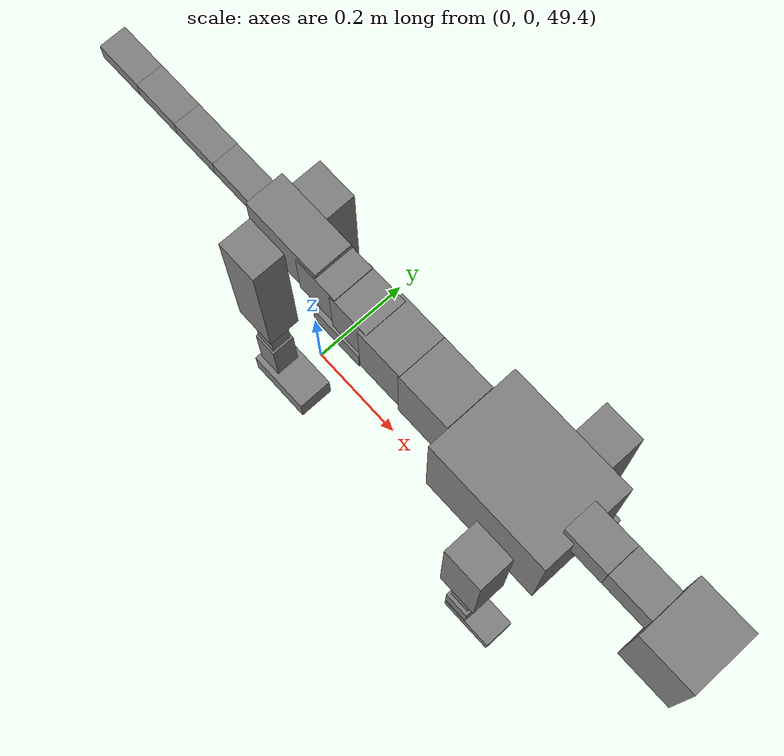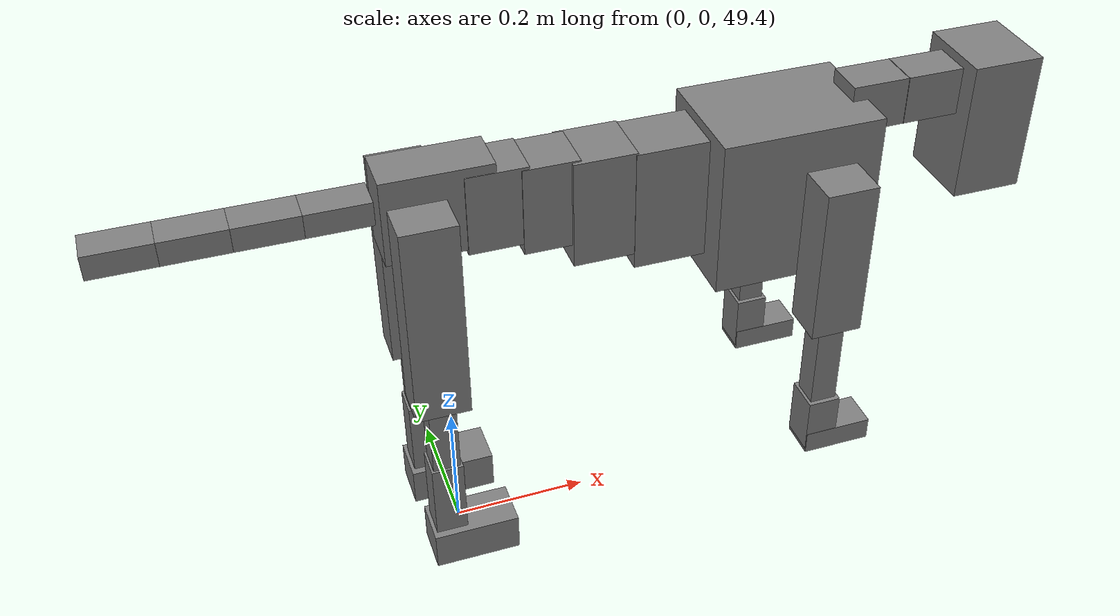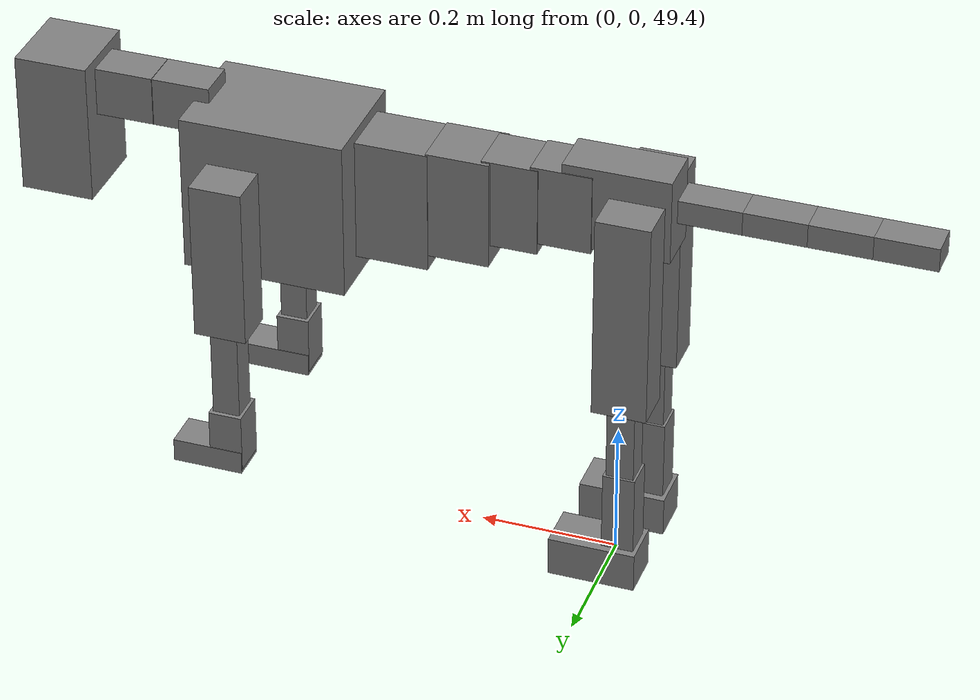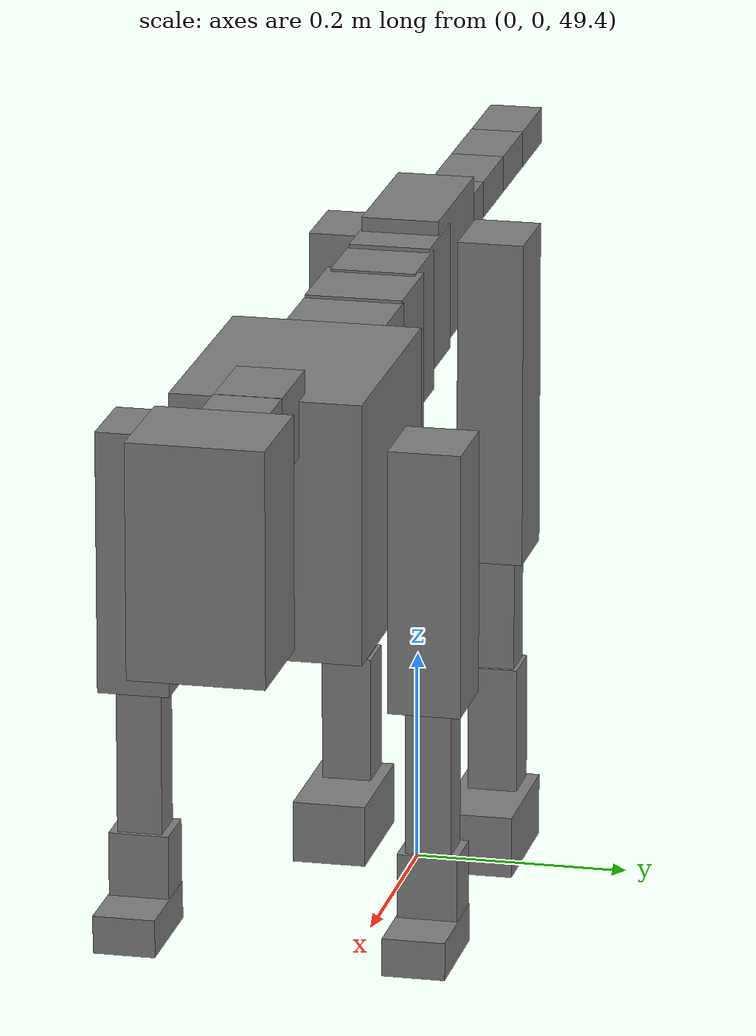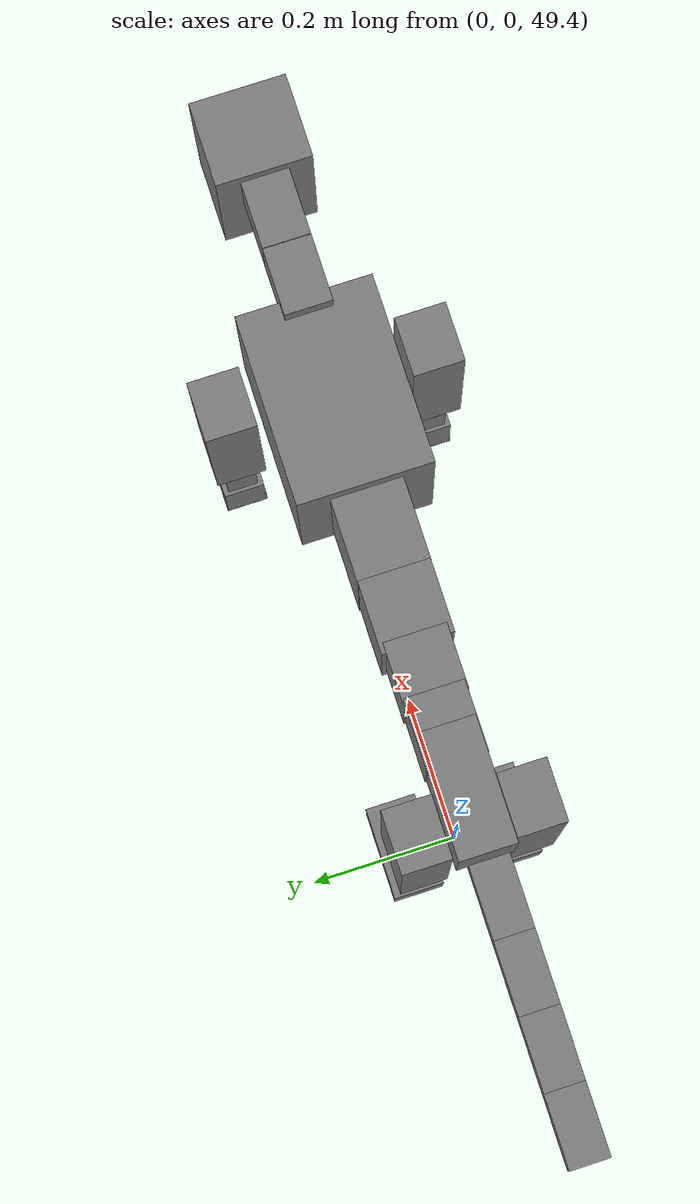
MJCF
<mujoco model="dog">

    <default>
        <joint armature="0.02" stiffness="1" damping="0.2" limited="true"/>
        <geom condim="3" friction="1 0.05 0.05" margin="0.01"/>
        <motor ctrllimited="true" ctrlrange="-1.0 1.0" forcelimited="true" gear="50"/>
    </default>

    <compiler inertiafromgeom="true" angle="radian"/>

    <option timestep="0.016" iterations="50" tolerance="1e-10" solver="Newton" jacobian="dense" cone="pyramidal"/>

    <size nconmax="20000" njmax="60000" nstack="5000000"/>
    <visual>
        <map force="0.1" zfar="30"/>
        <rgba haze="0.15 0.25 0.35 1"/>
        <quality shadowsize="2048"/>
        <global offwidth="800" offheight="800"/>
    </visual>

    <asset>
        <texture type="skybox" builtin="gradient" rgb1="0.3 0.5 0.7" rgb2="0 0 0" width="512" height="512"/>
        <texture name="texplane" type="2d" builtin="checker" rgb1=".2 .3 .4" rgb2=".1 0.15 0.2" width="512" height="512"
                 mark="cross" markrgb=".8 .8 .8"/>
        <texture name="texgeom" type="cube" builtin="flat" mark="cross" width="127" height="1278" rgb1="0.8 0.6 0.4"
                 rgb2="0.8 0.6 0.4" markrgb="1 1 1" random="0.01"/>

        <material name="matplane" reflectance="0.3" texture="texplane" texrepeat="1 1" texuniform="true"/>
        <material name="matgeom" texture="texgeom" texuniform="true" rgba="0.8 0.6 .4 1"/>
    </asset>

    <worldbody>
        <geom name="floor" pos="0 0 0" size="0 0 .25" type="plane" material="matplane" condim="3"/>

        <light directional="false" diffuse=".2 .2 .2" specular="0 0 0" pos="0 0 5" dir="0 0 -1" castshadow="false"/>
        <light mode="targetbodycom" target="torso" directional="false" diffuse=".8 .8 .8" specular="0.3 0.3 0.3"
               pos="0 0 4.0" dir="0 0 -1"/>

        <body name="root" pos="0 0 50">
            <freejoint name="root_1"/>
            <geom type="box" pos="0 0 -0.02" size="0.0774  0.0358  0.063" density="2030"/>

            <body name="spine1" pos="0.054 0 0">
                <joint name="spine1_y" axis="0 1 0" range="0 0.7" limited="true"/>
                <geom type="box" pos="0.02375 0 -0.03" size="0.04375  0.0375  0.05985" density="2030"/>

                <body name="spine2" pos="0.0612 0 0">
                    <joint name="spine2_y" axis="0 1 0" range="-0.15 0.15" limited="true"/>
                    <geom type="box" pos="0.03555  0  -0.04" size="0.04055  0.039  0.06615" density="2030"/>

                    <body name="spine3" pos="0.0730 0 0">
                        <joint name="spine3_y" axis="0 1 0" range="-0.15 0.15" limited="true"/>
                        <geom type="box" pos="0.03555  0  -0.057" size="0.04555  0.0445  0.081" density="2030"/>

                        <body name="spine4" pos="0.0780 0 0">
                            <joint name="spine4_y" axis="0 1 0" range="-0.15 0.15" limited="true"/>
                            <geom type="box" pos="0.05265  0  -0.07" size="0.05265  0.045  0.09135" density="2030"/>

                            <body name="torso" pos="0.1082 0 0">
                                <joint name="torso_y" axis="0 1 0" range="-0.15 0.15" limited="true"/>
                                <geom type="box" pos="0.11925  0  -0.085" size="0.11925  0.085  0.11745"
                                      density="2030"/>

                                <body name="neck1" pos="0.2160  0   0.0180">
                                    <joint name="neck1_y" axis="0 1 0" range="-1.2  -1" limited="true"/>
                                    <geom type="box" pos="0.0423  0  0" size="0.0423  0.03  0.036" density="2325"/>

                                    <body name="neck2" pos="0.0853  0  0">
                                        <joint name="neck2_y" axis="0 1 0" range="0.1  0" limited="true"/>
                                        <geom type="box" pos="0.0423  0  0" size="0.0423  0.03  0.036" density="2325"/>

                                        <body name="head" pos="0.0853  0  0">
                                            <joint name="head_y" axis="0 1 0" range="-0.3  -0.2" limited="true"/>
                                            <geom type="box" pos="0.0531  0  -0.055" size="0.0531  0.06  0.1044"
                                                  density="4030"/>

                                        </body>
                                    </body>
                                </body>

                                <body name="front_shoulder" pos="0.156  0   -0.0480">
                                    <joint name="front_shoulder_y" axis="0 1 0" range="-1 1.5" limited="true"/>
                                    <geom type="box" pos="0 0.13 -0.0927" size="0.0379  0.0324  0.1194" density="1158"/>
                                    <geom type="box" pos="0 -0.13 -0.0927" size="0.0379  0.0324  0.1194"
                                          density="1158"/>

                                    <body name="front_elbow" pos="0  0  -0.1854">
                                        <joint name="front_elbow_y" axis="0 1 0" range="-2 0" limited="true"/>
                                        <geom type="box" pos="0 0.13 -0.0872" size="0.0198  0.0202  0.0872"
                                              density="1081"/>
                                        <geom type="box" pos="0 -0.13 -0.0872" size="0.0198  0.0202  0.0872"
                                              density="1081"/>

                                        <body name="front_wrist" pos="0  0  -0.1743">
                                            <joint name="front_wrist_y" axis="0 1 0" range="-0.2 0" limited="true"/>
                                            <geom type="box" pos="0 0.13 -0.0302" size="0.0243  0.0270  0.0433"
                                                  density="1664"/>
                                            <geom type="box" pos="0 -0.13 -0.0302" size="0.0243  0.0270  0.0433"
                                                  density="1664"/>

                                            <body name="front_finger_end" pos="0  0  -0.0603">
                                                <joint name="front_finger_y" axis="0 1 0" range="-0.4 1"
                                                       limited="true"/>
                                                <geom type="box" pos="0.0280  0.13  -0.0023"
                                                      size="0.0514  0.0280  0.0173" density="1515"/>
                                                <geom type="box" pos="0.0280  -0.13  -0.0023"
                                                      size="0.0514  0.0280  0.0173" density="1515"/>

                                            </body>

                                        </body>
                                    </body>
                                </body>

                            </body>
                        </body>
                    </body>
                </body>
            </body>

            <body name="back_hip" pos="-0.03 0 -0.018">
                <joint name="back_hip_y" axis="0 1 0" range="-1.5 0.3" limited="true"/>
                <geom type="box" pos="0 0.07 -0.1314" size="0.0394  0.0309  0.1542" density="1154"/>
                <geom type="box" pos="0 -0.07 -0.1314" size="0.0394  0.0309  0.1542" density="1154"/>

                <body name="back_knee" pos="0  0  -0.2627">
                    <joint name="back_knee_y" axis="0 1 0" range="0 2.8" limited="true"/>
                    <geom type="box" pos="0 0.07 -0.0716" size="0.0199  0.0196  0.0871" density="1227"/>
                    <geom type="box" pos="0 -0.07 -0.0716" size="0.0199  0.0196  0.0871" density="1227"/>

                    <body name="back_ankle" pos="0  0  -0.1431">
                        <joint name="back_ankle_y" axis="0 1 0" range="-2.2 0" limited="true"/>
                        <geom type="box" pos="0 0.07 -0.0616" size="0.0233  0.0233  0.0729" density="1284"/>
                        <geom type="box" pos="0 -0.07 -0.0616" size="0.0233  0.0233  0.0729" density="1284"/>

                        <body name="back_toe_end" pos="0  0  -0.1232">
                            <joint name="back_toe_y" axis="0 1 0" range="-0.4 1" limited="true"/>
                            <geom type="box" pos="0.0344  0.07  -0.0142" size="0.0631  0.0344  0.0292" density="1515"/>
                            <geom type="box" pos="0.0344  -0.07  -0.0142" size="0.0631  0.0344  0.0292" density="1515"/>

                        </body>
                    </body>
                </body>
            </body>

            <body name="tail1" pos="-0.074 0 -0.006">
                <joint name="tail1_y" axis="0 1 0" range="-0.2 0.2" limited="true"/>
                <geom type="box" pos="-0.0536  0  0" size="0.045  0.025  0.0175" density="1587"/>

                <body name="tail2" pos="-0.09 0 0">
                    <joint name="tail2_y" axis="0 1 0" range="-0.2 0.2" limited="true"/>
                    <geom type="box" pos="-0.0536  0  0" size="0.045  0.025  0.0175" density="1587"/>

                    <body name="tail3" pos="-0.09 0 0">
                        <joint name="tail3_y" axis="0 1 0" range="-0.2 0.2" limited="true"/>
                        <geom type="box" pos="-0.0536  0  0" size="0.045  0.025  0.0175" density="1587"/>

                        <body name="tail4" pos="-0.09 0 0">
                            <joint name="tail4_y" axis="0 1 0" range="-0.2 0.2" limited="true"/>
                            <geom type="box" pos="-0.0536  0  0" size="0.045  0.025  0.0175" density="1587"/>

                        </body>
                    </body>
                </body>
            </body>
        </body>
    </worldbody>

    <actuator>
        <motor joint="spine1_y" forcerange="-150 150     "/>
        <motor joint="spine2_y" forcerange="-150 150     "/>
        <motor joint="spine3_y" forcerange="-150 150     "/>
        <motor joint="spine4_y" forcerange="-150 150     "/>
        <motor joint="torso_y" forcerange="-150 150     "/>
        <motor joint="neck1_y" forcerange="-100 100       "/>
        <motor joint="neck2_y" forcerange="-100 100       "/>
        <motor joint="head_y" forcerange="-150 150       "/>
        <motor joint="front_shoulder_y" forcerange="-119.37 196.80"/>
        <motor joint="front_elbow_y" forcerange="-116.01 130.97"/>
        <motor joint="front_wrist_y" forcerange="-144.22 72.09"/>
        <motor joint="front_finger_y" forcerange="-35.41 74.11"/>
        <motor joint="back_hip_y" forcerange="-341.70 270.35"/>
        <motor joint="back_knee_y" forcerange="-268.23 217.22"/>
        <motor joint="back_angle_y" forcerange="-154.83 118.20"/>
        <motor joint="back_toe_y" forcerange="-80.24 115.23"/>
        <motor joint="tail1_y" forcerange="-50 50     "/>
        <motor joint="tail2_y" forcerange="-50 50     "/>
        <motor joint="tail3_y" forcerange="-50 50     "/>
        <motor joint="tail4_y" forcerange="-50 50     "/>
    </actuator>
</mujoco>
